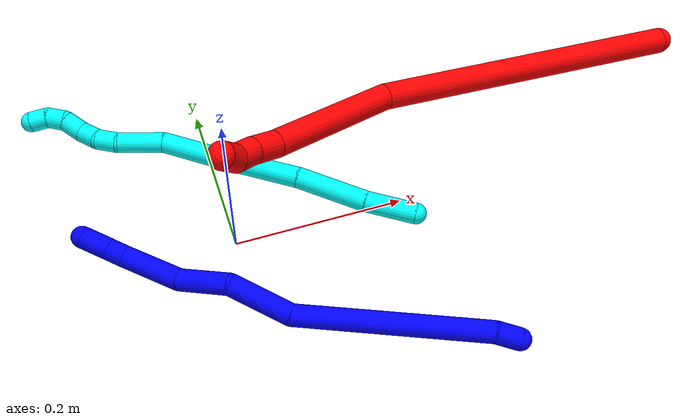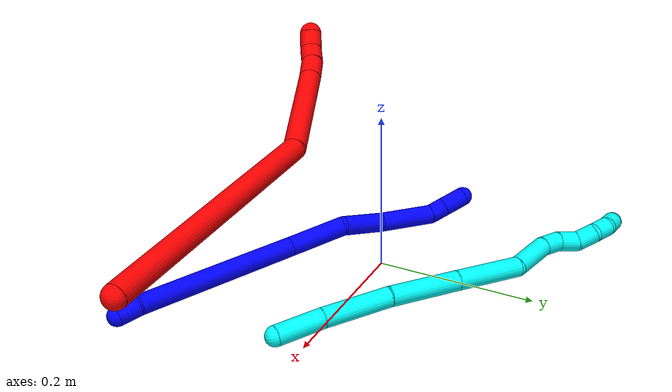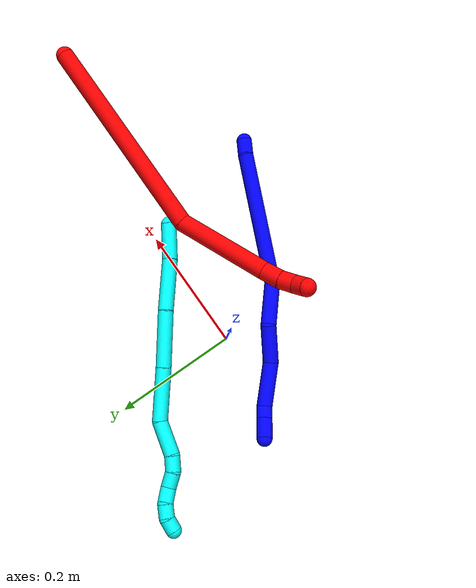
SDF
<sdf version="1.7">
 <world name="default">
  <plugin name="TubeGeneratorPlugin" filename="libtube_generator_plugin.so"/>
  <model name="photoneo_s_sensor">
   <static>1</static>
   <pose>0 0 2 1.57079 1.57079 3.14159</pose>
   <link name="link">
    <inertial><mass>0.1</mass></inertial>
    <sensor name="sensor" type="depth">
     <update_rate>30</update_rate>
     <camera>
      <horizontal_fov>1.22</horizontal_fov>
      <image><width>1920</width><height>1200</height><format>B8G8R8</format></image>
      <clip><near>0.1</near><far>4</far></clip>
      <depth_camera><output>points</output></depth_camera>
     </camera>
     <plugin name="camera_plugin" filename="libgazebo_ros_depth_camera.so">
      <baseline>0.2</baseline>
      <alwaysOn>1</alwaysOn>
      <updateRate>0.0</updateRate>
      <cameraName>camera_ir</cameraName>
      <imageTopicName>/camera/color/image_raw</imageTopicName>
      <cameraInfoTopicName>/camera/color/camera_info</cameraInfoTopicName>
      <depthImageTopicName>/camera/depth/image_raw</depthImageTopicName>
      <depthImageCameraInfoTopicName>/camera/depth/camera_info</depthImageCameraInfoTopicName>
      <pointCloudTopicName>/camera/depth/points</pointCloudTopicName>
      <frameName>fr_optical</frameName>
      <pointCloudCutoff>0.1</pointCloudCutoff>
      <pointCloudCutoffMax>2.0</pointCloudCutoffMax>
      <distortionK1>0</distortionK1>
      <distortionK2>0</distortionK2>
      <distortionK3>0</distortionK3>
      <distortionT1>0</distortionT1>
      <distortionT2>0</distortionT2>
      <CxPrime>0</CxPrime>
      <Cx>0</Cx>
      <Cy>0</Cy>
      <focalLength>0</focalLength>
      <hackBaseline>0</hackBaseline>
     </plugin>
    </sensor>
   </link>
  </model>
  <gravity>0 0 -9.8</gravity>
  <magnetic_field>6e-06 2.3e-05 -4.2e-05</magnetic_field>
  <atmosphere type="adiabatic"/>
  <physics name="default_physics" default="0" type="ode">
   <max_step_size>0.003</max_step_size>
   <real_time_factor>1</real_time_factor>
   <real_time_update_rate>1000</real_time_update_rate>
   <max_contacts>10000</max_contacts>
   <ode>
    <solver>
     <type>quick</type>
     <iters>100</iters>
     <sor>1.3</sor>
     <use_dynamic_moi_rescaling>0</use_dynamic_moi_rescaling>
    </solver>
    <constraints>
     <contact_max_correcting_vel>0</contact_max_correcting_vel>
     <contact_surface_layer>0.001</contact_surface_layer>
     <cfm>0</cfm>
     <erp>0.2</erp>
    </constraints>
   </ode>
  </physics>
  <scene><ambient>0.4 0.4 0.4 1</ambient><background>0.7 0.7 0.7 1</background><shadows>0</shadows></scene>
  <audio><device>default</device></audio>
  <spherical_coordinates>
   <surface_model>EARTH_WGS84</surface_model>
   <latitude_deg>0</latitude_deg>
   <longitude_deg>0</longitude_deg>
   <elevation>0</elevation>
   <heading_deg>0</heading_deg>
  </spherical_coordinates>
  <model name="bin">
   <static>1</static>
   <link name="bottom">
    <collision name="collision-bottom">
     <pose>0 0 -0.01 0 -0 0</pose>
     <geometry><box><size>0.8 0.6 0.02</size></box></geometry>
     <surface>
      <friction><ode><mu>100</mu><mu2>100</mu2></ode></friction>
      <contact><collide_bitmask>65535</collide_bitmask></contact>
     </surface>
    </collision>
   </link>
   <link name="west_wall">
    <collision name="collision-west_wall">
     <pose>-0.41 0 0.1 0 -0 0</pose>
     <geometry><box><size>0.02 0.6 0.2</size></box></geometry>
     <surface>
      <friction><ode><mu>100</mu><mu2>100</mu2></ode></friction>
      <contact><collide_bitmask>65535</collide_bitmask></contact>
     </surface>
    </collision>
   </link>
   <link name="east_wall">
    <collision name="collision-east_wall">
     <pose>0.41 0 0.1 0 -0 0</pose>
     <geometry><box><size>0.02 0.6 0.2</size></box></geometry>
     <surface>
      <friction><ode><mu>100</mu><mu2>100</mu2></ode></friction>
      <contact><collide_bitmask>65535</collide_bitmask></contact>
     </surface>
    </collision>
   </link>
   <link name="south_wall">
    <collision name="collision-south_wall">
     <pose>0 -0.31 0.1 0 -0 0</pose>
     <geometry><box><size>0.8 0.02 0.2</size></box></geometry>
     <surface>
      <friction><ode><mu>100</mu><mu2>100</mu2></ode></friction>
      <contact><collide_bitmask>65535</collide_bitmask></contact>
     </surface>
    </collision>
   </link>
   <link name="north_wall">
    <collision name="collision-north_wall">
     <pose>0 0.31 0.1 0 -0 0</pose>
     <geometry><box><size>0.8 0.02 0.2</size></box></geometry>
     <surface>
      <friction><ode><mu>100</mu><mu2>100</mu2></ode></friction>
      <contact><collide_bitmask>65535</collide_bitmask></contact>
     </surface>
    </collision>
   </link>
  </model>
  <model name="1">
   <static>0</static>
   <link name="1">
    <collision name="collision-cylinder-e_1_1_4">
     <pose>-0.007544 0.006037 -0.009206 -2.56121 -0.600749 1.60737</pose>
     <geometry><cylinder><radius>0.0125</radius><length>0.026691</length></cylinder></geometry>
     <surface>
      <friction><ode><mu>1.16</mu><mu2>1.16</mu2><slip1>0</slip1><slip2>0</slip2></ode></friction>
      <contact><ode><kp>1e+06</kp><kd>1</kd><max_vel>0</max_vel><min_depth>0.001</min_depth></ode></contact>
     </surface>
    </collision>
    <visual name="visual-cylinder-e_1_1_4">
     <pose>-0.007544 0.006037 -0.009206 -2.56121 -0.600749 1.60737</pose>
     <geometry><cylinder><radius>0.0125</radius><length>0.026691</length></cylinder></geometry>
     <material><ambient>0 0 1 1</ambient></material>
    </visual>
    <collision name="collision-cylinder-e_2_4_5">
     <pose>-0.088801 0.039629 -0.092491 -2.78547 -0.750551 2.28455</pose>
     <geometry><cylinder><radius>0.0125</radius><length>0.216155</length></cylinder></geometry>
     <surface>
      <friction><ode><mu>1.16</mu><mu2>1.16</mu2><slip1>0</slip1><slip2>0</slip2></ode></friction>
      <contact><ode><kp>1e+06</kp><kd>1</kd><max_vel>0</max_vel><min_depth>0.001</min_depth></ode></contact>
     </surface>
    </collision>
    <visual name="visual-cylinder-e_2_4_5">
     <pose>-0.088801 0.039629 -0.092491 -2.78547 -0.750551 2.28455</pose>
     <geometry><cylinder><radius>0.0125</radius><length>0.216155</length></cylinder></geometry>
     <material><ambient>0 0 1 1</ambient></material>
    </visual>
    <collision name="collision-cylinder-e_3_5_6">
     <pose>-0.177074 0.085036 -0.195408 -2.58732 -0.405522 1.25164</pose>
     <geometry><cylinder><radius>0.0125</radius><length>0.073816</length></cylinder></geometry>
     <surface>
      <friction><ode><mu>1.16</mu><mu2>1.16</mu2><slip1>0</slip1><slip2>0</slip2></ode></friction>
      <contact><ode><kp>1e+06</kp><kd>1</kd><max_vel>0</max_vel><min_depth>0.001</min_depth></ode></contact>
     </surface>
    </collision>
    <visual name="visual-cylinder-e_3_5_6">
     <pose>-0.177074 0.085036 -0.195408 -2.58732 -0.405522 1.25164</pose>
     <geometry><cylinder><radius>0.0125</radius><length>0.073816</length></cylinder></geometry>
     <material><ambient>0 0 1 1</ambient></material>
    </visual>
    <collision name="collision-cylinder-e_4_6_7">
     <pose>-0.209432 0.105206 -0.248236 -3.04519 -0.636045 2.8506</pose>
     <geometry><cylinder><radius>0.0125</radius><length>0.059924</length></cylinder></geometry>
     <surface>
      <friction><ode><mu>1.16</mu><mu2>1.16</mu2><slip1>0</slip1><slip2>0</slip2></ode></friction>
      <contact><ode><kp>1e+06</kp><kd>1</kd><max_vel>0</max_vel><min_depth>0.001</min_depth></ode></contact>
     </surface>
    </collision>
    <visual name="visual-cylinder-e_4_6_7">
     <pose>-0.209432 0.105206 -0.248236 -3.04519 -0.636045 2.8506</pose>
     <geometry><cylinder><radius>0.0125</radius><length>0.059924</length></cylinder></geometry>
     <material><ambient>0 0 1 1</ambient></material>
    </visual>
    <collision name="collision-cylinder-e_5_7_8">
     <pose>-0.24131 0.117485 -0.303481 -2.83312 -0.405444 1.84646</pose>
     <geometry><cylinder><radius>0.0125</radius><length>0.071395</length></cylinder></geometry>
     <surface>
      <friction><ode><mu>1.16</mu><mu2>1.16</mu2><slip1>0</slip1><slip2>0</slip2></ode></friction>
      <contact><ode><kp>1e+06</kp><kd>1</kd><max_vel>0</max_vel><min_depth>0.001</min_depth></ode></contact>
     </surface>
    </collision>
    <visual name="visual-cylinder-e_5_7_8">
     <pose>-0.24131 0.117485 -0.303481 -2.83312 -0.405444 1.84646</pose>
     <geometry><cylinder><radius>0.0125</radius><length>0.071395</length></cylinder></geometry>
     <material><ambient>0 0 1 1</ambient></material>
    </visual>
    <collision name="collision-cylinder-e_6_8_9">
     <pose>-0.259968 0.133166 -0.341912 -2.46833 -0.46274 1.18503</pose>
     <geometry><cylinder><radius>0.0125</radius><length>0.020513</length></cylinder></geometry>
     <surface>
      <friction><ode><mu>1.16</mu><mu2>1.16</mu2><slip1>0</slip1><slip2>0</slip2></ode></friction>
      <contact><ode><kp>1e+06</kp><kd>1</kd><max_vel>0</max_vel><min_depth>0.001</min_depth></ode></contact>
     </surface>
    </collision>
    <visual name="visual-cylinder-e_6_8_9">
     <pose>-0.259968 0.133166 -0.341912 -2.46833 -0.46274 1.18503</pose>
     <geometry><cylinder><radius>0.0125</radius><length>0.020513</length></cylinder></geometry>
     <material><ambient>0 0 1 1</ambient></material>
    </visual>
    <collision name="collision-cylinder-e_7_9_2">
     <pose>-0.271632 0.147628 -0.360115 -2.47152 -0.466447 1.19747</pose>
     <geometry><cylinder><radius>0.0125</radius><length>0.031507</length></cylinder></geometry>
     <surface>
      <friction><ode><mu>1.16</mu><mu2>1.16</mu2><slip1>0</slip1><slip2>0</slip2></ode></friction>
      <contact><ode><kp>1e+06</kp><kd>1</kd><max_vel>0</max_vel><min_depth>0.001</min_depth></ode></contact>
     </surface>
    </collision>
    <visual name="visual-cylinder-e_7_9_2">
     <pose>-0.271632 0.147628 -0.360115 -2.47152 -0.466447 1.19747</pose>
     <geometry><cylinder><radius>0.0125</radius><length>0.031507</length></cylinder></geometry>
     <material><ambient>0 0 1 1</ambient></material>
    </visual>
    <collision name="collision-sphere-2">
     <pose>-0.278716 0.156366 -0.371143 0 -0 0</pose>
     <geometry><sphere><radius>0.0125</radius></sphere></geometry>
     <surface>
      <friction><ode><mu>1.16</mu><mu2>1.16</mu2><slip1>0</slip1><slip2>0</slip2></ode></friction>
      <contact><ode><kp>1e+06</kp><kd>1</kd><max_vel>0</max_vel><min_depth>0.001</min_depth></ode></contact>
     </surface>
    </collision>
    <visual name="visual-sphere-2">
     <pose>-0.278716 0.156366 -0.371143 0 -0 0</pose>
     <geometry><sphere><radius>0.0125</radius></sphere></geometry>
     <material><ambient>0 0 1 1</ambient></material>
    </visual>
    <collision name="collision-sphere-9">
     <pose>-0.264547 0.138889 -0.349087 0 -0 0</pose>
     <geometry><sphere><radius>0.0125</radius></sphere></geometry>
     <surface>
      <friction><ode><mu>1.16</mu><mu2>1.16</mu2><slip1>0</slip1><slip2>0</slip2></ode></friction>
      <contact><ode><kp>1e+06</kp><kd>1</kd><max_vel>0</max_vel><min_depth>0.001</min_depth></ode></contact>
     </surface>
    </collision>
    <visual name="visual-sphere-9">
     <pose>-0.264547 0.138889 -0.349087 0 -0 0</pose>
     <geometry><sphere><radius>0.0125</radius></sphere></geometry>
     <material><ambient>0 0 1 1</ambient></material>
    </visual>
    <collision name="collision-sphere-4">
     <pose>-0.015087 0.012073 -0.018412 0 -0 0</pose>
     <geometry><sphere><radius>0.0125</radius></sphere></geometry>
     <surface>
      <friction><ode><mu>1.16</mu><mu2>1.16</mu2><slip1>0</slip1><slip2>0</slip2></ode></friction>
      <contact><ode><kp>1e+06</kp><kd>1</kd><max_vel>0</max_vel><min_depth>0.001</min_depth></ode></contact>
     </surface>
    </collision>
    <visual name="visual-sphere-4">
     <pose>-0.015087 0.012073 -0.018412 0 -0 0</pose>
     <geometry><sphere><radius>0.0125</radius></sphere></geometry>
     <material><ambient>0 0 1 1</ambient></material>
    </visual>
    <collision name="collision-sphere-1">
     <geometry><sphere><radius>0.0125</radius></sphere></geometry>
     <surface>
      <friction><ode><mu>1.16</mu><mu2>1.16</mu2><slip1>0</slip1><slip2>0</slip2></ode></friction>
      <contact><ode><kp>1e+06</kp><kd>1</kd><max_vel>0</max_vel><min_depth>0.001</min_depth></ode></contact>
     </surface>
    </collision>
    <visual name="visual-sphere-1">
     <geometry><sphere><radius>0.0125</radius></sphere></geometry>
     <material><ambient>0 0 1 1</ambient></material>
    </visual>
    <collision name="collision-sphere-8">
     <pose>-0.25539 0.127444 -0.334736 0 -0 0</pose>
     <geometry><sphere><radius>0.0125</radius></sphere></geometry>
     <surface>
      <friction><ode><mu>1.16</mu><mu2>1.16</mu2><slip1>0</slip1><slip2>0</slip2></ode></friction>
      <contact><ode><kp>1e+06</kp><kd>1</kd><max_vel>0</max_vel><min_depth>0.001</min_depth></ode></contact>
     </surface>
    </collision>
    <visual name="visual-sphere-8">
     <pose>-0.25539 0.127444 -0.334736 0 -0 0</pose>
     <geometry><sphere><radius>0.0125</radius></sphere></geometry>
     <material><ambient>0 0 1 1</ambient></material>
    </visual>
    <collision name="collision-sphere-5">
     <pose>-0.162514 0.067186 -0.166571 0 -0 0</pose>
     <geometry><sphere><radius>0.0125</radius></sphere></geometry>
     <surface>
      <friction><ode><mu>1.16</mu><mu2>1.16</mu2><slip1>0</slip1><slip2>0</slip2></ode></friction>
      <contact><ode><kp>1e+06</kp><kd>1</kd><max_vel>0</max_vel><min_depth>0.001</min_depth></ode></contact>
     </surface>
    </collision>
    <visual name="visual-sphere-5">
     <pose>-0.162514 0.067186 -0.166571 0 -0 0</pose>
     <geometry><sphere><radius>0.0125</radius></sphere></geometry>
     <material><ambient>0 0 1 1</ambient></material>
    </visual>
    <collision name="collision-sphere-6">
     <pose>-0.191634 0.102886 -0.224245 0 -0 0</pose>
     <geometry><sphere><radius>0.0125</radius></sphere></geometry>
     <surface>
      <friction><ode><mu>1.16</mu><mu2>1.16</mu2><slip1>0</slip1><slip2>0</slip2></ode></friction>
      <contact><ode><kp>1e+06</kp><kd>1</kd><max_vel>0</max_vel><min_depth>0.001</min_depth></ode></contact>
     </surface>
    </collision>
    <visual name="visual-sphere-6">
     <pose>-0.191634 0.102886 -0.224245 0 -0 0</pose>
     <geometry><sphere><radius>0.0125</radius></sphere></geometry>
     <material><ambient>0 0 1 1</ambient></material>
    </visual>
    <collision name="collision-sphere-7">
     <pose>-0.22723 0.107525 -0.272226 0 -0 0</pose>
     <geometry><sphere><radius>0.0125</radius></sphere></geometry>
     <surface>
      <friction><ode><mu>1.16</mu><mu2>1.16</mu2><slip1>0</slip1><slip2>0</slip2></ode></friction>
      <contact><ode><kp>1e+06</kp><kd>1</kd><max_vel>0</max_vel><min_depth>0.001</min_depth></ode></contact>
     </surface>
    </collision>
    <visual name="visual-sphere-7">
     <pose>-0.22723 0.107525 -0.272226 0 -0 0</pose>
     <geometry><sphere><radius>0.0125</radius></sphere></geometry>
     <material><ambient>0 0 1 1</ambient></material>
    </visual>
    <inertial>
     <pose>-0.152272 0.074158 -0.179129 0 -0 0</pose>
     <mass>0.5</mass>
     <inertia>
      <ixx>0.000102</ixx>
      <ixy>0</ixy>
      <ixz>0</ixz>
      <iyy>0.001259</iyy>
      <iyz>0</iyz>
      <izz>0.000345</izz>
     </inertia>
    </inertial>
   </link>
   <pose>0.251865 -0.214267 0.011543 1.28477 -0.106498 0.402359</pose>
  </model>
  <model name="2">
   <static>0</static>
   <link name="2">
    <collision name="collision-cylinder-e_1_1_4">
     <pose>-0.068578 0.019033 -0.130615 -2.99689 -0.479165 2.56474</pose>
     <geometry><cylinder><radius>0.0125</radius><length>0.297493</length></cylinder></geometry>
     <surface>
      <friction><ode><mu>1.16</mu><mu2>1.16</mu2><slip1>0</slip1><slip2>0</slip2></ode></friction>
      <contact><ode><kp>1e+06</kp><kd>1</kd><max_vel>0</max_vel><min_depth>0.001</min_depth></ode></contact>
     </surface>
    </collision>
    <visual name="visual-cylinder-e_1_1_4">
     <pose>-0.068578 0.019033 -0.130615 -2.99689 -0.479165 2.56474</pose>
     <geometry><cylinder><radius>0.0125</radius><length>0.297493</length></cylinder></geometry>
     <material><ambient>1 0 0 1</ambient></material>
    </visual>
    <collision name="collision-cylinder-e_2_4_5">
     <pose>-0.169061 0.018812 -0.316583 2.80685 -0.498533 -1.9697</pose>
     <geometry><cylinder><radius>0.0125</radius><length>0.133456</length></cylinder></geometry>
     <surface>
      <friction><ode><mu>1.16</mu><mu2>1.16</mu2><slip1>0</slip1><slip2>0</slip2></ode></friction>
      <contact><ode><kp>1e+06</kp><kd>1</kd><max_vel>0</max_vel><min_depth>0.001</min_depth></ode></contact>
     </surface>
    </collision>
    <visual name="visual-cylinder-e_2_4_5">
     <pose>-0.169061 0.018812 -0.316583 2.80685 -0.498533 -1.9697</pose>
     <geometry><cylinder><radius>0.0125</radius><length>0.133456</length></cylinder></geometry>
     <material><ambient>1 0 0 1</ambient></material>
    </visual>
    <collision name="collision-cylinder-e_3_5_6">
     <pose>-0.208908 -0.004975 -0.381584 2.70227 -0.640368 -1.95643</pose>
     <geometry><cylinder><radius>0.0125</radius><length>0.026587</length></cylinder></geometry>
     <surface>
      <friction><ode><mu>1.16</mu><mu2>1.16</mu2><slip1>0</slip1><slip2>0</slip2></ode></friction>
      <contact><ode><kp>1e+06</kp><kd>1</kd><max_vel>0</max_vel><min_depth>0.001</min_depth></ode></contact>
     </surface>
    </collision>
    <visual name="visual-cylinder-e_3_5_6">
     <pose>-0.208908 -0.004975 -0.381584 2.70227 -0.640368 -1.95643</pose>
     <geometry><cylinder><radius>0.0125</radius><length>0.026587</length></cylinder></geometry>
     <material><ambient>1 0 0 1</ambient></material>
    </visual>
    <collision name="collision-cylinder-e_4_6_7">
     <pose>-0.222761 -0.014944 -0.398593 2.50564 -0.573441 -1.46097</pose>
     <geometry><cylinder><radius>0.0125</radius><length>0.021786</length></cylinder></geometry>
     <surface>
      <friction><ode><mu>1.16</mu><mu2>1.16</mu2><slip1>0</slip1><slip2>0</slip2></ode></friction>
      <contact><ode><kp>1e+06</kp><kd>1</kd><max_vel>0</max_vel><min_depth>0.001</min_depth></ode></contact>
     </surface>
    </collision>
    <visual name="visual-cylinder-e_4_6_7">
     <pose>-0.222761 -0.014944 -0.398593 2.50564 -0.573441 -1.46097</pose>
     <geometry><cylinder><radius>0.0125</radius><length>0.021786</length></cylinder></geometry>
     <material><ambient>1 0 0 1</ambient></material>
    </visual>
    <collision name="collision-cylinder-e_5_7_2">
     <pose>-0.237087 -0.025327 -0.409358 2.17326 -0.951014 -1.54965</pose>
     <geometry><cylinder><radius>0.0125</radius><length>0.020679</length></cylinder></geometry>
     <surface>
      <friction><ode><mu>1.16</mu><mu2>1.16</mu2><slip1>0</slip1><slip2>0</slip2></ode></friction>
      <contact><ode><kp>1e+06</kp><kd>1</kd><max_vel>0</max_vel><min_depth>0.001</min_depth></ode></contact>
     </surface>
    </collision>
    <visual name="visual-cylinder-e_5_7_2">
     <pose>-0.237087 -0.025327 -0.409358 2.17326 -0.951014 -1.54965</pose>
     <geometry><cylinder><radius>0.0125</radius><length>0.020679</length></cylinder></geometry>
     <material><ambient>1 0 0 1</ambient></material>
    </visual>
    <collision name="collision-sphere-2">
     <pose>-0.245503 -0.030275 -0.412761 0 -0 0</pose>
     <geometry><sphere><radius>0.0125</radius></sphere></geometry>
     <surface>
      <friction><ode><mu>1.16</mu><mu2>1.16</mu2><slip1>0</slip1><slip2>0</slip2></ode></friction>
      <contact><ode><kp>1e+06</kp><kd>1</kd><max_vel>0</max_vel><min_depth>0.001</min_depth></ode></contact>
     </surface>
    </collision>
    <visual name="visual-sphere-2">
     <pose>-0.245503 -0.030275 -0.412761 0 -0 0</pose>
     <geometry><sphere><radius>0.0125</radius></sphere></geometry>
     <material><ambient>1 0 0 1</ambient></material>
    </visual>
    <collision name="collision-sphere-7">
     <pose>-0.228671 -0.020379 -0.405955 0 -0 0</pose>
     <geometry><sphere><radius>0.0125</radius></sphere></geometry>
     <surface>
      <friction><ode><mu>1.16</mu><mu2>1.16</mu2><slip1>0</slip1><slip2>0</slip2></ode></friction>
      <contact><ode><kp>1e+06</kp><kd>1</kd><max_vel>0</max_vel><min_depth>0.001</min_depth></ode></contact>
     </surface>
    </collision>
    <visual name="visual-sphere-7">
     <pose>-0.228671 -0.020379 -0.405955 0 -0 0</pose>
     <geometry><sphere><radius>0.0125</radius></sphere></geometry>
     <material><ambient>1 0 0 1</ambient></material>
    </visual>
    <collision name="collision-sphere-6">
     <pose>-0.216851 -0.009509 -0.391231 0 -0 0</pose>
     <geometry><sphere><radius>0.0125</radius></sphere></geometry>
     <surface>
      <friction><ode><mu>1.16</mu><mu2>1.16</mu2><slip1>0</slip1><slip2>0</slip2></ode></friction>
      <contact><ode><kp>1e+06</kp><kd>1</kd><max_vel>0</max_vel><min_depth>0.001</min_depth></ode></contact>
     </surface>
    </collision>
    <visual name="visual-sphere-6">
     <pose>-0.216851 -0.009509 -0.391231 0 -0 0</pose>
     <geometry><sphere><radius>0.0125</radius></sphere></geometry>
     <material><ambient>1 0 0 1</ambient></material>
    </visual>
    <collision name="collision-sphere-5">
     <pose>-0.200966 -0.000441 -0.371936 0 -0 0</pose>
     <geometry><sphere><radius>0.0125</radius></sphere></geometry>
     <surface>
      <friction><ode><mu>1.16</mu><mu2>1.16</mu2><slip1>0</slip1><slip2>0</slip2></ode></friction>
      <contact><ode><kp>1e+06</kp><kd>1</kd><max_vel>0</max_vel><min_depth>0.001</min_depth></ode></contact>
     </surface>
    </collision>
    <visual name="visual-sphere-5">
     <pose>-0.200966 -0.000441 -0.371936 0 -0 0</pose>
     <geometry><sphere><radius>0.0125</radius></sphere></geometry>
     <material><ambient>1 0 0 1</ambient></material>
    </visual>
    <collision name="collision-sphere-1">
     <geometry><sphere><radius>0.0125</radius></sphere></geometry>
     <surface>
      <friction><ode><mu>1.16</mu><mu2>1.16</mu2><slip1>0</slip1><slip2>0</slip2></ode></friction>
      <contact><ode><kp>1e+06</kp><kd>1</kd><max_vel>0</max_vel><min_depth>0.001</min_depth></ode></contact>
     </surface>
    </collision>
    <visual name="visual-sphere-1">
     <geometry><sphere><radius>0.0125</radius></sphere></geometry>
     <material><ambient>1 0 0 1</ambient></material>
    </visual>
    <collision name="collision-sphere-4">
     <pose>-0.137156 0.038066 -0.26123 0 -0 0</pose>
     <geometry><sphere><radius>0.0125</radius></sphere></geometry>
     <surface>
      <friction><ode><mu>1.16</mu><mu2>1.16</mu2><slip1>0</slip1><slip2>0</slip2></ode></friction>
      <contact><ode><kp>1e+06</kp><kd>1</kd><max_vel>0</max_vel><min_depth>0.001</min_depth></ode></contact>
     </surface>
    </collision>
    <visual name="visual-sphere-4">
     <pose>-0.137156 0.038066 -0.26123 0 -0 0</pose>
     <geometry><sphere><radius>0.0125</radius></sphere></geometry>
     <material><ambient>1 0 0 1</ambient></material>
    </visual>
    <inertial>
     <pose>-0.116547 0.014382 -0.216802 0 -0 0</pose>
     <mass>0.5</mass>
     <inertia>
      <ixx>-0.000831</ixx>
      <ixy>0</ixy>
      <ixz>0</ixz>
      <iyy>0.002913</iyy>
      <iyz>0</iyz>
      <izz>0.000865</izz>
     </inertia>
    </inertial>
   </link>
   <pose>0.452864 -0.029799 0.210993 -0.766629 1.04301 -0.553135</pose>
  </model>
  <model name="3">
   <static>0</static>
   <link name="3">
    <collision name="collision-cylinder-e_1_1_4">
     <pose>-0.026487 0.013478 -0.003746 -1.84187 -1.0849 1.34107</pose>
     <geometry><cylinder><radius>0.0125</radius><length>0.059908</length></cylinder></geometry>
     <surface>
      <friction><ode><mu>1.16</mu><mu2>1.16</mu2><slip1>0</slip1><slip2>0</slip2></ode></friction>
      <contact><ode><kp>1e+06</kp><kd>1</kd><max_vel>0</max_vel><min_depth>0.001</min_depth></ode></contact>
     </surface>
    </collision>
    <visual name="visual-cylinder-e_1_1_4">
     <pose>-0.026487 0.013478 -0.003746 -1.84187 -1.0849 1.34107</pose>
     <geometry><cylinder><radius>0.0125</radius><length>0.059908</length></cylinder></geometry>
     <material><ambient>0.003922 1 0.996078 1</ambient></material>
    </visual>
    <collision name="collision-cylinder-e_2_4_5">
     <pose>-0.088008 0.050138 -0.012561 -1.78608 -0.975442 1.16535</pose>
     <geometry><cylinder><radius>0.0125</radius><length>0.084628</length></cylinder></geometry>
     <surface>
      <friction><ode><mu>1.16</mu><mu2>1.16</mu2><slip1>0</slip1><slip2>0</slip2></ode></friction>
      <contact><ode><kp>1e+06</kp><kd>1</kd><max_vel>0</max_vel><min_depth>0.001</min_depth></ode></contact>
     </surface>
    </collision>
    <visual name="visual-cylinder-e_2_4_5">
     <pose>-0.088008 0.050138 -0.012561 -1.78608 -0.975442 1.16535</pose>
     <geometry><cylinder><radius>0.0125</radius><length>0.084628</length></cylinder></geometry>
     <material><ambient>0.003922 1 0.996078 1</ambient></material>
    </visual>
    <collision name="collision-cylinder-e_3_5_6">
     <pose>-0.161532 0.09582 -0.027978 -2.00185 -0.99905 1.41083</pose>
     <geometry><cylinder><radius>0.0125</radius><length>0.091539</length></cylinder></geometry>
     <surface>
      <friction><ode><mu>1.16</mu><mu2>1.16</mu2><slip1>0</slip1><slip2>0</slip2></ode></friction>
      <contact><ode><kp>1e+06</kp><kd>1</kd><max_vel>0</max_vel><min_depth>0.001</min_depth></ode></contact>
     </surface>
    </collision>
    <visual name="visual-cylinder-e_3_5_6">
     <pose>-0.161532 0.09582 -0.027978 -2.00185 -0.99905 1.41083</pose>
     <geometry><cylinder><radius>0.0125</radius><length>0.091539</length></cylinder></geometry>
     <material><ambient>0.003922 1 0.996078 1</ambient></material>
    </visual>
    <collision name="collision-cylinder-e_4_6_7">
     <pose>-0.235435 0.140529 -0.047613 -1.96686 -0.973798 1.34363</pose>
     <geometry><cylinder><radius>0.0125</radius><length>0.085638</length></cylinder></geometry>
     <surface>
      <friction><ode><mu>1.16</mu><mu2>1.16</mu2><slip1>0</slip1><slip2>0</slip2></ode></friction>
      <contact><ode><kp>1e+06</kp><kd>1</kd><max_vel>0</max_vel><min_depth>0.001</min_depth></ode></contact>
     </surface>
    </collision>
    <visual name="visual-cylinder-e_4_6_7">
     <pose>-0.235435 0.140529 -0.047613 -1.96686 -0.973798 1.34363</pose>
     <geometry><cylinder><radius>0.0125</radius><length>0.085638</length></cylinder></geometry>
     <material><ambient>0.003922 1 0.996078 1</ambient></material>
    </visual>
    <collision name="collision-cylinder-e_5_7_8">
     <pose>-0.298601 0.167198 -0.058255 -1.86592 -1.40433 1.70267</pose>
     <geometry><cylinder><radius>0.0125</radius><length>0.056285</length></cylinder></geometry>
     <surface>
      <friction><ode><mu>1.16</mu><mu2>1.16</mu2><slip1>0</slip1><slip2>0</slip2></ode></friction>
      <contact><ode><kp>1e+06</kp><kd>1</kd><max_vel>0</max_vel><min_depth>0.001</min_depth></ode></contact>
     </surface>
    </collision>
    <visual name="visual-cylinder-e_5_7_8">
     <pose>-0.298601 0.167198 -0.058255 -1.86592 -1.40433 1.70267</pose>
     <geometry><cylinder><radius>0.0125</radius><length>0.056285</length></cylinder></geometry>
     <material><ambient>0.003922 1 0.996078 1</ambient></material>
    </visual>
    <collision name="collision-cylinder-e_6_8_9">
     <pose>-0.337945 0.176911 -0.062086 -2.0112 -1.10647 1.5442</pose>
     <geometry><cylinder><radius>0.0125</radius><length>0.025925</length></cylinder></geometry>
     <surface>
      <friction><ode><mu>1.16</mu><mu2>1.16</mu2><slip1>0</slip1><slip2>0</slip2></ode></friction>
      <contact><ode><kp>1e+06</kp><kd>1</kd><max_vel>0</max_vel><min_depth>0.001</min_depth></ode></contact>
     </surface>
    </collision>
    <visual name="visual-cylinder-e_6_8_9">
     <pose>-0.337945 0.176911 -0.062086 -2.0112 -1.10647 1.5442</pose>
     <geometry><cylinder><radius>0.0125</radius><length>0.025925</length></cylinder></geometry>
     <material><ambient>0.003922 1 0.996078 1</ambient></material>
    </visual>
    <collision name="collision-cylinder-e_7_9_10">
     <pose>-0.35842 0.190895 -0.069024 -2.04329 -0.736109 1.12462</pose>
     <geometry><cylinder><radius>0.0125</radius><length>0.026468</length></cylinder></geometry>
     <surface>
      <friction><ode><mu>1.16</mu><mu2>1.16</mu2><slip1>0</slip1><slip2>0</slip2></ode></friction>
      <contact><ode><kp>1e+06</kp><kd>1</kd><max_vel>0</max_vel><min_depth>0.001</min_depth></ode></contact>
     </surface>
    </collision>
    <visual name="visual-cylinder-e_7_9_10">
     <pose>-0.35842 0.190895 -0.069024 -2.04329 -0.736109 1.12462</pose>
     <geometry><cylinder><radius>0.0125</radius><length>0.026468</length></cylinder></geometry>
     <material><ambient>0.003922 1 0.996078 1</ambient></material>
    </visual>
    <collision name="collision-cylinder-e_8_10_11">
     <pose>-0.376829 0.208275 -0.071809 -1.37908 -0.82432 0.691999</pose>
     <geometry><cylinder><radius>0.0125</radius><length>0.025946</length></cylinder></geometry>
     <surface>
      <friction><ode><mu>1.16</mu><mu2>1.16</mu2><slip1>0</slip1><slip2>0</slip2></ode></friction>
      <contact><ode><kp>1e+06</kp><kd>1</kd><max_vel>0</max_vel><min_depth>0.001</min_depth></ode></contact>
     </surface>
    </collision>
    <visual name="visual-cylinder-e_8_10_11">
     <pose>-0.376829 0.208275 -0.071809 -1.37908 -0.82432 0.691999</pose>
     <geometry><cylinder><radius>0.0125</radius><length>0.025946</length></cylinder></geometry>
     <material><ambient>0.003922 1 0.996078 1</ambient></material>
    </visual>
    <collision name="collision-cylinder-e_9_11_12">
     <pose>-0.396634 0.221071 -0.071064 -1.79202 -1.17874 1.3923</pose>
     <geometry><cylinder><radius>0.0125</radius><length>0.022253</length></cylinder></geometry>
     <surface>
      <friction><ode><mu>1.16</mu><mu2>1.16</mu2><slip1>0</slip1><slip2>0</slip2></ode></friction>
      <contact><ode><kp>1e+06</kp><kd>1</kd><max_vel>0</max_vel><min_depth>0.001</min_depth></ode></contact>
     </surface>
    </collision>
    <visual name="visual-cylinder-e_9_11_12">
     <pose>-0.396634 0.221071 -0.071064 -1.79202 -1.17874 1.3923</pose>
     <geometry><cylinder><radius>0.0125</radius><length>0.022253</length></cylinder></geometry>
     <material><ambient>0.003922 1 0.996078 1</ambient></material>
    </visual>
    <collision name="collision-cylinder-e_10_12_2">
     <pose>-0.417383 0.224711 -0.074184 2.91349 -1.35941 -2.85999</pose>
     <geometry><cylinder><radius>0.0125</radius><length>0.02141</length></cylinder></geometry>
     <surface>
      <friction><ode><mu>1.16</mu><mu2>1.16</mu2><slip1>0</slip1><slip2>0</slip2></ode></friction>
      <contact><ode><kp>1e+06</kp><kd>1</kd><max_vel>0</max_vel><min_depth>0.001</min_depth></ode></contact>
     </surface>
    </collision>
    <visual name="visual-cylinder-e_10_12_2">
     <pose>-0.417383 0.224711 -0.074184 2.91349 -1.35941 -2.85999</pose>
     <geometry><cylinder><radius>0.0125</radius><length>0.02141</length></cylinder></geometry>
     <material><ambient>0.003922 1 0.996078 1</ambient></material>
    </visual>
    <collision name="collision-sphere-2">
     <pose>-0.42785 0.224203 -0.076372 0 -0 0</pose>
     <geometry><sphere><radius>0.0125</radius></sphere></geometry>
     <surface>
      <friction><ode><mu>1.16</mu><mu2>1.16</mu2><slip1>0</slip1><slip2>0</slip2></ode></friction>
      <contact><ode><kp>1e+06</kp><kd>1</kd><max_vel>0</max_vel><min_depth>0.001</min_depth></ode></contact>
     </surface>
    </collision>
    <visual name="visual-sphere-2">
     <pose>-0.42785 0.224203 -0.076372 0 -0 0</pose>
     <geometry><sphere><radius>0.0125</radius></sphere></geometry>
     <material><ambient>0.003922 1 0.996078 1</ambient></material>
    </visual>
    <collision name="collision-sphere-12">
     <pose>-0.406916 0.225219 -0.071996 0 -0 0</pose>
     <geometry><sphere><radius>0.0125</radius></sphere></geometry>
     <surface>
      <friction><ode><mu>1.16</mu><mu2>1.16</mu2><slip1>0</slip1><slip2>0</slip2></ode></friction>
      <contact><ode><kp>1e+06</kp><kd>1</kd><max_vel>0</max_vel><min_depth>0.001</min_depth></ode></contact>
     </surface>
    </collision>
    <visual name="visual-sphere-12">
     <pose>-0.406916 0.225219 -0.071996 0 -0 0</pose>
     <geometry><sphere><radius>0.0125</radius></sphere></geometry>
     <material><ambient>0.003922 1 0.996078 1</ambient></material>
    </visual>
    <collision name="collision-sphere-11">
     <pose>-0.386352 0.216923 -0.070131 0 -0 0</pose>
     <geometry><sphere><radius>0.0125</radius></sphere></geometry>
     <surface>
      <friction><ode><mu>1.16</mu><mu2>1.16</mu2><slip1>0</slip1><slip2>0</slip2></ode></friction>
      <contact><ode><kp>1e+06</kp><kd>1</kd><max_vel>0</max_vel><min_depth>0.001</min_depth></ode></contact>
     </surface>
    </collision>
    <visual name="visual-sphere-11">
     <pose>-0.386352 0.216923 -0.070131 0 -0 0</pose>
     <geometry><sphere><radius>0.0125</radius></sphere></geometry>
     <material><ambient>0.003922 1 0.996078 1</ambient></material>
    </visual>
    <collision name="collision-sphere-10">
     <pose>-0.367305 0.199627 -0.073488 0 -0 0</pose>
     <geometry><sphere><radius>0.0125</radius></sphere></geometry>
     <surface>
      <friction><ode><mu>1.16</mu><mu2>1.16</mu2><slip1>0</slip1><slip2>0</slip2></ode></friction>
      <contact><ode><kp>1e+06</kp><kd>1</kd><max_vel>0</max_vel><min_depth>0.001</min_depth></ode></contact>
     </surface>
    </collision>
    <visual name="visual-sphere-10">
     <pose>-0.367305 0.199627 -0.073488 0 -0 0</pose>
     <geometry><sphere><radius>0.0125</radius></sphere></geometry>
     <material><ambient>0.003922 1 0.996078 1</ambient></material>
    </visual>
    <collision name="collision-sphere-9">
     <pose>-0.349535 0.182162 -0.064561 0 -0 0</pose>
     <geometry><sphere><radius>0.0125</radius></sphere></geometry>
     <surface>
      <friction><ode><mu>1.16</mu><mu2>1.16</mu2><slip1>0</slip1><slip2>0</slip2></ode></friction>
      <contact><ode><kp>1e+06</kp><kd>1</kd><max_vel>0</max_vel><min_depth>0.001</min_depth></ode></contact>
     </surface>
    </collision>
    <visual name="visual-sphere-9">
     <pose>-0.349535 0.182162 -0.064561 0 -0 0</pose>
     <geometry><sphere><radius>0.0125</radius></sphere></geometry>
     <material><ambient>0.003922 1 0.996078 1</ambient></material>
    </visual>
    <collision name="collision-sphere-4">
     <pose>-0.052974 0.026956 -0.007491 0 -0 0</pose>
     <geometry><sphere><radius>0.0125</radius></sphere></geometry>
     <surface>
      <friction><ode><mu>1.16</mu><mu2>1.16</mu2><slip1>0</slip1><slip2>0</slip2></ode></friction>
      <contact><ode><kp>1e+06</kp><kd>1</kd><max_vel>0</max_vel><min_depth>0.001</min_depth></ode></contact>
     </surface>
    </collision>
    <visual name="visual-sphere-4">
     <pose>-0.052974 0.026956 -0.007491 0 -0 0</pose>
     <geometry><sphere><radius>0.0125</radius></sphere></geometry>
     <material><ambient>0.003922 1 0.996078 1</ambient></material>
    </visual>
    <collision name="collision-sphere-1">
     <geometry><sphere><radius>0.0125</radius></sphere></geometry>
     <surface>
      <friction><ode><mu>1.16</mu><mu2>1.16</mu2><slip1>0</slip1><slip2>0</slip2></ode></friction>
      <contact><ode><kp>1e+06</kp><kd>1</kd><max_vel>0</max_vel><min_depth>0.001</min_depth></ode></contact>
     </surface>
    </collision>
    <visual name="visual-sphere-1">
     <geometry><sphere><radius>0.0125</radius></sphere></geometry>
     <material><ambient>0.003922 1 0.996078 1</ambient></material>
    </visual>
    <collision name="collision-sphere-8">
     <pose>-0.326355 0.17166 -0.059612 0 -0 0</pose>
     <geometry><sphere><radius>0.0125</radius></sphere></geometry>
     <surface>
      <friction><ode><mu>1.16</mu><mu2>1.16</mu2><slip1>0</slip1><slip2>0</slip2></ode></friction>
      <contact><ode><kp>1e+06</kp><kd>1</kd><max_vel>0</max_vel><min_depth>0.001</min_depth></ode></contact>
     </surface>
    </collision>
    <visual name="visual-sphere-8">
     <pose>-0.326355 0.17166 -0.059612 0 -0 0</pose>
     <geometry><sphere><radius>0.0125</radius></sphere></geometry>
     <material><ambient>0.003922 1 0.996078 1</ambient></material>
    </visual>
    <collision name="collision-sphere-5">
     <pose>-0.123042 0.07332 -0.01763 0 -0 0</pose>
     <geometry><sphere><radius>0.0125</radius></sphere></geometry>
     <surface>
      <friction><ode><mu>1.16</mu><mu2>1.16</mu2><slip1>0</slip1><slip2>0</slip2></ode></friction>
      <contact><ode><kp>1e+06</kp><kd>1</kd><max_vel>0</max_vel><min_depth>0.001</min_depth></ode></contact>
     </surface>
    </collision>
    <visual name="visual-sphere-5">
     <pose>-0.123042 0.07332 -0.01763 0 -0 0</pose>
     <geometry><sphere><radius>0.0125</radius></sphere></geometry>
     <material><ambient>0.003922 1 0.996078 1</ambient></material>
    </visual>
    <collision name="collision-sphere-6">
     <pose>-0.200023 0.118321 -0.038326 0 -0 0</pose>
     <geometry><sphere><radius>0.0125</radius></sphere></geometry>
     <surface>
      <friction><ode><mu>1.16</mu><mu2>1.16</mu2><slip1>0</slip1><slip2>0</slip2></ode></friction>
      <contact><ode><kp>1e+06</kp><kd>1</kd><max_vel>0</max_vel><min_depth>0.001</min_depth></ode></contact>
     </surface>
    </collision>
    <visual name="visual-sphere-6">
     <pose>-0.200023 0.118321 -0.038326 0 -0 0</pose>
     <geometry><sphere><radius>0.0125</radius></sphere></geometry>
     <material><ambient>0.003922 1 0.996078 1</ambient></material>
    </visual>
    <collision name="collision-sphere-7">
     <pose>-0.270848 0.162736 -0.056899 0 -0 0</pose>
     <geometry><sphere><radius>0.0125</radius></sphere></geometry>
     <surface>
      <friction><ode><mu>1.16</mu><mu2>1.16</mu2><slip1>0</slip1><slip2>0</slip2></ode></friction>
      <contact><ode><kp>1e+06</kp><kd>1</kd><max_vel>0</max_vel><min_depth>0.001</min_depth></ode></contact>
     </surface>
    </collision>
    <visual name="visual-sphere-7">
     <pose>-0.270848 0.162736 -0.056899 0 -0 0</pose>
     <geometry><sphere><radius>0.0125</radius></sphere></geometry>
     <material><ambient>0.003922 1 0.996078 1</ambient></material>
    </visual>
    <inertial>
     <pose>-0.213155 0.120081 -0.039348 0 -0 0</pose>
     <mass>0.5</mass>
     <inertia>
      <ixx>0.000106</ixx>
      <ixy>0</ixy>
      <ixz>0</ixz>
      <iyy>0.000286</iyy>
      <iyz>0</iyz>
      <izz>7.7e-05</izz>
     </inertia>
    </inertial>
   </link>
   <pose>0.207674 -0.030631 0.012282 0.223289 0.072476 -0.087638</pose>
  </model>
 </world>
</sdf>
